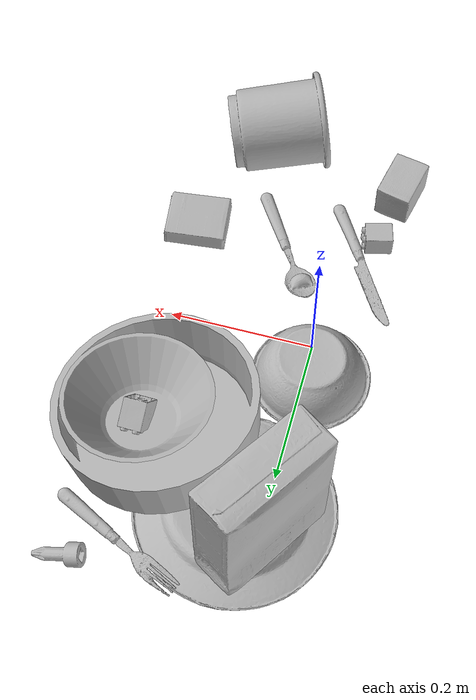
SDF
<sdf version="1.4">
  <world name="default">
    <light name="light1" type="point">
      <pose>0 0 1 0 0 0</pose>
      <diffuse>3 3 3 1</diffuse>
      <specular>3 3 3 1</specular>
    </light>
    <light name="light2" type="point">
      <pose>0 0.5 2 0 0 0</pose>
      <diffuse>1 1 1 1</diffuse>
      <specular>1 1 1 1</specular>
    </light>
    <light name="light3" type="point">
      <pose>0 0.5 2 0 0 0</pose>
      <diffuse>3 3 3 1</diffuse>
      <specular>3 3 3 1</specular>
    </light>
    <scene>
      <ambient>0.7 0.7 0.7</ambient>
    </scene>
    <model name="plate1">
      <link name="link_plate1">
        <collision name="default">
          <geometry>
            <mesh>
              <uri>model://plate/collision_meshes/collision.obj</uri>
              <scale>1.0 1.0 1.0</scale>
            </mesh>
          </geometry>
          <surface>
            <friction>
              <ode>
                <mu>0.5</mu>
                <mu2>0.5</mu2>
              </ode>
            </friction>
          <contact>
        <ode>
            <max_vel>0</max_vel>
            <min_depth>0.0001</min_depth>
            <kp>1e8</kp>
        </ode>
    </contact></surface>
        </collision>
        <visual name="default">
          <geometry>
            <mesh>
              <uri>model://plate/visual_meshes/visual.dae</uri>
              <scale>1.0 1.0 1.0</scale>
            </mesh>
          </geometry>
        </visual>
        <inertial>
          <mass>0.20059238374233246</mass>
          <pose>-0.0006044621695764363 0.00027825910365208983 -0.001056200242601335 0.002218800652723057 -0.0032254723094637602 0.45260588699646775</pose>
          <inertia>
            <ixx>0.00093837525</ixx>
            <iyy>0.0009294</iyy>
            <izz>0.0018353215</izz>
            <ixy>0</ixy>
            <ixz>0</ixz>
            <iyz>0</iyz>
          </inertia>
        </inertial>
      </link>
      <pose>0.03797268494963646 0.25382000207901 0.013482015579938889 3.133197580974559 -0.004056944026910543 0.8168022619599259</pose>
    </model>
    <model name="plate2">
      <link name="link_plate2">
        <collision name="default">
          <geometry>
            <mesh>
              <uri>model://pan_tefal/collision_meshes/collision.obj</uri>
              <scale>1.0 1.0 1.0</scale>
            </mesh>
          </geometry>
          <surface>
            <friction>
              <ode>
                <mu>0.5</mu>
                <mu2>0.5</mu2>
              </ode>
            </friction>
          <contact>
        <ode>
            <max_vel>0</max_vel>
            <min_depth>0.0001</min_depth>
            <kp>1e8</kp>
        </ode>
    </contact></surface>
        </collision>
        <visual name="default">
          <geometry>
            <mesh>
              <uri>model://pan_tefal/visual_meshes/visual.dae</uri>
              <scale>1.0 1.0 1.0</scale>
            </mesh>
          </geometry>
        </visual>
        <inertial>
          <mass>0.5801199674606323</mass>
          <pose>-0.00018002555589191616 3.279062366345897e-05 -0.008514936082065105 0.0008190222895173471 -0.0003301392673675887 -0.3318501085377774</pose>
          <inertia>
            <ixx>0.00400454</ixx>
            <iyy>0.004030358</iyy>
            <izz>0.0073715877</izz>
            <ixy>0</ixy>
            <ixz>0</ixz>
            <iyz>0</iyz>
          </inertia>
        </inertial>
      </link>
      <pose>0.15868507325649261 0.1771358996629715 0.056768909096717834 -0.15490552654277248 0.039984362015803854 -1.8562793106022935</pose>
    </model>
    <model name="bowl1">
      <link name="link_bowl1">
        <collision name="default">
          <geometry>
            <mesh>
              <uri>model://bowl/collision_meshes/collision.obj</uri>
              <scale>1.0 1.0 1.0</scale>
            </mesh>
          </geometry>
          <surface>
            <friction>
              <ode>
                <mu>0.5</mu>
                <mu2>0.5</mu2>
              </ode>
            </friction>
          <contact>
        <ode>
            <max_vel>0</max_vel>
            <min_depth>0.0001</min_depth>
            <kp>1e8</kp>
        </ode>
    </contact></surface>
        </collision>
        <visual name="default">
          <geometry>
            <mesh>
              <uri>model://bowl/visual_meshes/visual.dae</uri>
              <scale>1.0 1.0 1.0</scale>
            </mesh>
          </geometry>
        </visual>
        <inertial>
          <mass>0.055578216910362244</mass>
          <pose>0.00020445502013899386 -0.0010302060982212424 -0.000804265437182039 -0.015764048263850368 0.014546844804774466 0.7140432473852318</pose>
          <inertia>
            <ixx>0.00012766755</ixx>
            <iyy>0.000124815</iyy>
            <izz>0.00021478078</izz>
            <ixy>0</ixy>
            <ixz>0</ixz>
            <iyz>0</iyz>
          </inertia>
        </inertial>
      </link>
      <pose>-0.009089432656764984 0.045431043952703476 0.02724733203649521 -3.132723828822697 0.0006755901257126606 1.1426245033287303</pose>
    </model>
    <model name="bowl2">
      <link name="link_bowl2">
        <collision name="default">
          <geometry>
            <mesh>
              <uri>model://bowl_a/collision_meshes/collision.obj</uri>
              <scale>1.0 1.0 1.0</scale>
            </mesh>
          </geometry>
          <surface>
            <friction>
              <ode>
                <mu>0.5</mu>
                <mu2>0.5</mu2>
              </ode>
            </friction>
          <contact>
        <ode>
            <max_vel>0</max_vel>
            <min_depth>0.0001</min_depth>
            <kp>1e8</kp>
        </ode>
    </contact></surface>
        </collision>
        <visual name="default">
          <geometry>
            <mesh>
              <uri>model://bowl_a/visual_meshes/visual.dae</uri>
              <scale>1.0 1.0 1.0</scale>
            </mesh>
          </geometry>
        </visual>
        <inertial>
          <mass>0.31475314497947693</mass>
          <pose>0.00027867438620887697 4.730821092380211e-05 -0.0013765294570475817 -0.0009805369688078041 -0.0010938258688624044 -0.19123886294168949</pose>
          <inertia>
            <ixx>0.00089611666</ixx>
            <iyy>0.00090161816</iyy>
            <izz>0.0015937777</izz>
            <ixy>0</ixy>
            <ixz>0</ixz>
            <iyz>0</iyz>
          </inertia>
        </inertial>
      </link>
      <pose>0.1853954792022705 0.17692872881889343 0.05742044746875763 -0.015121176522959474 -0.1242266210048881 2.1101667225419254</pose>
    </model>
    <model name="silverware1">
      <link name="link_silverware1">
        <collision name="default">
          <geometry>
            <mesh>
              <uri>model://spoon/collision_meshes/collision.obj</uri>
              <scale>1.0 1.0 1.0</scale>
            </mesh>
          </geometry>
          <surface>
            <friction>
              <ode>
                <mu>0.5</mu>
                <mu2>0.5</mu2>
              </ode>
            </friction>
          <contact>
        <ode>
            <max_vel>0</max_vel>
            <min_depth>0.0001</min_depth>
            <kp>1e8</kp>
        </ode>
    </contact></surface>
        </collision>
        <visual name="default">
          <geometry>
            <mesh>
              <uri>model://spoon/visual_meshes/visual.dae</uri>
              <scale>1.0 1.0 1.0</scale>
            </mesh>
          </geometry>
        </visual>
        <inertial>
          <mass>0.019504988566040993</mass>
          <pose>-0.005526313092559576 -0.0016034174477681518 -0.0007271654321812093 0.03521671064592188 -0.039065845080026425 0.006150613244710899</pose>
          <inertia>
            <ixx>1.0848988e-06</ixx>
            <iyy>7.421582e-05</iyy>
            <izz>7.4750846e-05</izz>
            <ixy>0</ixy>
            <ixz>0</ixz>
            <iyz>0</iyz>
          </inertia>
        </inertial>
      </link>
      <pose>0.07213040441274643 -0.14772285521030426 0.008385262452065945 0.006729206390890761 0.02689299704324799 2.1370247485364984</pose>
    </model>
    <model name="box1">
      <link name="link_box1">
        <collision name="default">
          <geometry>
            <mesh>
              <uri>model://cracker_box/collision_meshes/collision.obj</uri>
              <scale>1.0 1.0 1.0</scale>
            </mesh>
          </geometry>
          <surface>
            <friction>
              <ode>
                <mu>0.5</mu>
                <mu2>0.5</mu2>
              </ode>
            </friction>
          <contact>
        <ode>
            <max_vel>0</max_vel>
            <min_depth>0.0001</min_depth>
            <kp>1e8</kp>
        </ode>
    </contact></surface>
        </collision>
        <visual name="default">
          <geometry>
            <mesh>
              <uri>model://cracker_box/visual_meshes/visual.dae</uri>
              <scale>1.0 1.0 1.0</scale>
            </mesh>
          </geometry>
        </visual>
        <inertial>
          <mass>2.5078790187835693</mass>
          <pose>0.0009464150061830878 0.00025434247800149024 -0.0017029535956680775 -0.00031620768203149627 -0.01110648960041945 0.002546794303792924</pose>
          <inertia>
            <ixx>0.0063789245</ixx>
            <iyy>0.010532858</iyy>
            <izz>0.015031353</izz>
            <ixy>0</ixy>
            <ixz>0</ixz>
            <iyz>0</iyz>
          </inertia>
        </inertial>
      </link>
      <pose>-0.006955252029001713 0.29029402136802673 0.13389262557029724 1.4288870522349515 -1.5692418634587293 -2.0124342435863847</pose>
    </model>
    <model name="box2">
      <link name="link_box2">
        <collision name="default">
          <geometry>
            <mesh>
              <uri>model://gelatin_box/collision_meshes/collision.obj</uri>
              <scale>1.0 1.0 1.0</scale>
            </mesh>
          </geometry>
          <surface>
            <friction>
              <ode>
                <mu>0.5</mu>
                <mu2>0.5</mu2>
              </ode>
            </friction>
          <contact>
        <ode>
            <max_vel>0</max_vel>
            <min_depth>0.0001</min_depth>
            <kp>1e8</kp>
        </ode>
    </contact></surface>
        </collision>
        <visual name="default">
          <geometry>
            <mesh>
              <uri>model://gelatin_box/visual_meshes/visual.dae</uri>
              <scale>1.0 1.0 1.0</scale>
            </mesh>
          </geometry>
        </visual>
        <inertial>
          <mass>0.1847851723432541</mass>
          <pose>0.0004319618456065655 0.00011156872642459348 -0.0003640321083366871 -0.001050372098056681 -0.004755818221834168 0.016440563197305347</pose>
          <inertia>
            <ixx>0.00013044327</ixx>
            <iyy>9.317494e-05</iyy>
            <izz>0.0001985637</izz>
            <ixy>0</ixy>
            <ixz>0</ixz>
            <iyz>0</iyz>
          </inertia>
        </inertial>
      </link>
      <pose>0.20765502750873566 -0.15333762764930725 0.01458064280450344 -3.1258657011638906 -0.025719253369993405 -1.4424494450679115</pose>
    </model>
    <model name="cup1">
      <link name="link_cup1">
        <collision name="default">
          <geometry>
            <mesh>
              <uri>model://d_cups/collision_meshes/collision.obj</uri>
              <scale>2.0 2.0 2.0</scale>
            </mesh>
          </geometry>
          <surface>
            <friction>
              <ode>
                <mu>0.5</mu>
                <mu2>0.5</mu2>
              </ode>
            </friction>
          <contact>
        <ode>
            <max_vel>0</max_vel>
            <min_depth>0.0001</min_depth>
            <kp>1e8</kp>
        </ode>
    </contact></surface>
        </collision>
        <visual name="default">
          <geometry>
            <mesh>
              <uri>model://d_cups/visual_meshes/visual.dae</uri>
              <scale>2.0 2.0 2.0</scale>
            </mesh>
          </geometry>
        </visual>
        <inertial>
          <mass>0.47328615188598633</mass>
          <pose>0.0016136143822222948 0.0038234798703342676 -0.004533303435891867 0.24012870248045765 -0.247092443015796 0.5942312682521343</pose>
          <inertia>
            <ixx>0.0015850074</ixx>
            <iyy>0.0015804201</iyy>
            <izz>0.0014347013</izz>
            <ixy>0</ixy>
            <ixz>0</ixz>
            <iyz>0</iyz>
          </inertia>
        </inertial>
      </link>
      <pose>0.13011272251605988 -0.3144742250442505 0.06484407931566238 -1.4778966975665777 -0.005602550052892742 1.9313778690806627</pose>
    </model>
    <model name="silverware2">
      <link name="link_silverware2">
        <collision name="default">
          <geometry>
            <mesh>
              <uri>model://knife/collision_meshes/collision.obj</uri>
              <scale>1.0 1.0 1.0</scale>
            </mesh>
          </geometry>
          <surface>
            <friction>
              <ode>
                <mu>0.5</mu>
                <mu2>0.5</mu2>
              </ode>
            </friction>
          <contact>
        <ode>
            <max_vel>0</max_vel>
            <min_depth>0.0001</min_depth>
            <kp>1e8</kp>
        </ode>
    </contact></surface>
        </collision>
        <visual name="default">
          <geometry>
            <mesh>
              <uri>model://knife/visual_meshes/visual.dae</uri>
              <scale>1.0 1.0 1.0</scale>
            </mesh>
          </geometry>
        </visual>
        <inertial>
          <mass>0.03430156037211418</mass>
          <pose>-0.02378525398671627 0.0015275129117071629 5.062017953605391e-05 0.07305950900181668 0.01724842494985857 -0.007409825116106198</pose>
          <inertia>
            <ixx>9.736174e-07</ixx>
            <iyy>0.00013178105</iyy>
            <izz>0.00013209462</izz>
            <ixy>0</ixy>
            <ixz>0</ixz>
            <iyz>0</iyz>
          </inertia>
        </inertial>
      </link>
      <pose>-0.035059548914432526 -0.14563487470149994 0.007946522906422615 -0.023907507039314765 -0.014542507484867127 2.1060204383240313</pose>
    </model>
    <model name="silverware3">
      <link name="link_silverware3">
        <collision name="default">
          <geometry>
            <mesh>
              <uri>model://fork/collision_meshes/collision.obj</uri>
              <scale>1.0 1.0 1.0</scale>
            </mesh>
          </geometry>
          <surface>
            <friction>
              <ode>
                <mu>0.5</mu>
                <mu2>0.5</mu2>
              </ode>
            </friction>
          <contact>
        <ode>
            <max_vel>0</max_vel>
            <min_depth>0.0001</min_depth>
            <kp>1e8</kp>
        </ode>
    </contact></surface>
        </collision>
        <visual name="default">
          <geometry>
            <mesh>
              <uri>model://fork/visual_meshes/visual.dae</uri>
              <scale>1.0 1.0 1.0</scale>
            </mesh>
          </geometry>
        </visual>
        <inertial>
          <mass>0.014111565425992012</mass>
          <pose>-0.02957005426287651 0.0004658825055230409 0.00032188615296036005 -0.01355195006397287 -0.010977841645129428 0.014453906946454091</pose>
          <inertia>
            <ixx>4.9469025e-07</ixx>
            <iyy>3.684124e-05</iyy>
            <izz>3.7062495e-05</izz>
            <ixy>0</ixy>
            <ixz>0</ixz>
            <iyz>0</iyz>
          </inertia>
        </inertial>
      </link>
      <pose>0.16897769272327423 0.3340822756290436 0.009117314592003822 -2.647965981382947 -0.018293414564669676 2.687945681978931</pose>
    </model>
    <model name="toy1">
      <link name="link_toy1">
        <collision name="default">
          <geometry>
            <mesh>
              <uri>model://b_lego_duplo/collision_meshes/collision.obj</uri>
              <scale>1.0 1.0 1.0</scale>
            </mesh>
          </geometry>
          <surface>
            <friction>
              <ode>
                <mu>0.5</mu>
                <mu2>0.5</mu2>
              </ode>
            </friction>
          <contact>
        <ode>
            <max_vel>0</max_vel>
            <min_depth>0.0001</min_depth>
            <kp>1e8</kp>
        </ode>
    </contact></surface>
        </collision>
        <visual name="default">
          <geometry>
            <mesh>
              <uri>model://b_lego_duplo/visual_meshes/visual.dae</uri>
              <scale>1.0 1.0 1.0</scale>
            </mesh>
          </geometry>
        </visual>
        <inertial>
          <mass>0.029451588168740273</mass>
          <pose>-0.00011053002526750788 -9.152366146736313e-06 0.0019294293597340584 -0.03749525813168218 -0.026353287435260622 0.45191626186006195</pose>
          <inertia>
            <ixx>6.0274892e-06</ixx>
            <iyy>6.0680068e-06</iyy>
            <izz>5.3702943e-06</izz>
            <ixy>0</ixy>
            <ixz>0</ixz>
            <iyz>0</iyz>
          </inertia>
        </inertial>
      </link>
      <pose>-0.04896446317434311 -0.1898055523633957 0.016121307387948036 1.5723746571726742 -0.012009988450296426 1.8228969349179467</pose>
    </model>
    <model name="toy2">
      <link name="link_toy2">
        <collision name="default">
          <geometry>
            <mesh>
              <uri>model://foam_brick/collision_meshes/collision.obj</uri>
              <scale>1.0 1.0 1.0</scale>
            </mesh>
          </geometry>
          <surface>
            <friction>
              <ode>
                <mu>0.5</mu>
                <mu2>0.5</mu2>
              </ode>
            </friction>
          <contact>
        <ode>
            <max_vel>0</max_vel>
            <min_depth>0.0001</min_depth>
            <kp>1e8</kp>
        </ode>
    </contact></surface>
        </collision>
        <visual name="default">
          <geometry>
            <mesh>
              <uri>model://foam_brick/visual_meshes/visual.dae</uri>
              <scale>1.0 1.0 1.0</scale>
            </mesh>
          </geometry>
        </visual>
        <inertial>
          <mass>0.2443593144416809</mass>
          <pose>-0.0002522472059354186 0.00034584393142722547 -0.0002532101352699101 -0.2940184651969868 0.017274440266988163 -0.0007449890747987857</pose>
          <inertia>
            <ixx>0.00010674072</ixx>
            <iyy>0.00017041703</iyy>
            <izz>0.00017258283</izz>
            <ixy>0</ixy>
            <ixz>0</ixz>
            <iyz>0</iyz>
          </inertia>
        </inertial>
      </link>
      <pose>-0.06559108942747116 -0.27966687083244324 0.02591070346534252 1.5828205654849932 -0.00037543972838482146 1.3674955330019605</pose>
    </model>
    <model name="toy3">
      <link name="link_toy3">
        <collision name="default">
          <geometry>
            <mesh>
              <uri>model://d_lego_duplo/collision_meshes/collision.obj</uri>
              <scale>1.0 1.0 1.0</scale>
            </mesh>
          </geometry>
          <surface>
            <friction>
              <ode>
                <mu>0.5</mu>
                <mu2>0.5</mu2>
              </ode>
            </friction>
          <contact>
        <ode>
            <max_vel>0</max_vel>
            <min_depth>0.0001</min_depth>
            <kp>1e8</kp>
        </ode>
    </contact></surface>
        </collision>
        <visual name="default">
          <geometry>
            <mesh>
              <uri>model://d_lego_duplo/visual_meshes/visual.dae</uri>
              <scale>1.0 1.0 1.0</scale>
            </mesh>
          </geometry>
        </visual>
        <inertial>
          <mass>0.033699363470077515</mass>
          <pose>0.002830563113093376 0.0001636613014852628 0.0008589802891947329 0.08010879334546937 -0.38355231252286476 0.0010296922462193392</pose>
          <inertia>
            <ixx>6.5236977e-06</ixx>
            <iyy>9.258897e-06</iyy>
            <izz>8.928908e-06</izz>
            <ixy>0</ixy>
            <ixz>0</ixz>
            <iyz>0</iyz>
          </inertia>
        </inertial>
      </link>
      <pose>0.18719464540481567 0.18247495591640472 0.04969514161348343 -3.073969009328945 -0.9827748350903609 1.4794017153527728</pose>
    </model>
    <model name="toy4">
      <link name="link_toy4">
        <collision name="default">
          <geometry>
            <mesh>
              <uri>model://d_toy_airplane/collision_meshes/collision.obj</uri>
              <scale>1.0 1.0 1.0</scale>
            </mesh>
          </geometry>
          <surface>
            <friction>
              <ode>
                <mu>0.5</mu>
                <mu2>0.5</mu2>
              </ode>
            </friction>
          <contact>
        <ode>
            <max_vel>0</max_vel>
            <min_depth>0.0001</min_depth>
            <kp>1e8</kp>
        </ode>
    </contact></surface>
        </collision>
        <visual name="default">
          <geometry>
            <mesh>
              <uri>model://d_toy_airplane/visual_meshes/visual.dae</uri>
              <scale>1.0 1.0 1.0</scale>
            </mesh>
          </geometry>
        </visual>
        <inertial>
          <mass>0.016584575176239014</mass>
          <pose>9.410303027834743e-05 -5.809338472317904e-05 -0.01172809861600399 0.0002669776058846709 0.004678969238403601 0.5194647440200774</pose>
          <inertia>
            <ixx>4.9717323e-06</ixx>
            <iyy>4.975482e-06</iyy>
            <izz>1.5009987e-06</izz>
            <ixy>0</ixy>
            <ixz>0</ixz>
            <iyz>0</iyz>
          </inertia>
        </inertial>
      </link>
      <pose>0.23191000521183014 0.37190335988998413 0.01127537153661251 2.327341111648938 1.2427114928821774 2.4540858209078142</pose>
    </model>
    <model name="toy5">
      <link name="link_toy5">
        <collision name="default">
          <geometry>
            <mesh>
              <uri>model://e_toy_airplane/collision_meshes/collision.obj</uri>
              <scale>1.0 1.0 1.0</scale>
            </mesh>
          </geometry>
          <surface>
            <friction>
              <ode>
                <mu>0.5</mu>
                <mu2>0.5</mu2>
              </ode>
            </friction>
          <contact>
        <ode>
            <max_vel>0</max_vel>
            <min_depth>0.0001</min_depth>
            <kp>1e8</kp>
        </ode>
    </contact></surface>
        </collision>
        <visual name="default">
          <geometry>
            <mesh>
              <uri>model://e_toy_airplane/visual_meshes/visual.dae</uri>
              <scale>1.0 1.0 1.0</scale>
            </mesh>
          </geometry>
        </visual>
        <inertial>
          <mass>0.01714155077934265</mass>
          <pose>0.00011740483023459092 -2.2482887288788334e-05 -0.011187203228473663 0.005518467343725363 0.009228313895921611 0.15041273076279138</pose>
          <inertia>
            <ixx>5.2317982e-06</ixx>
            <iyy>5.178279e-06</iyy>
            <izz>1.5723607e-06</izz>
            <ixy>0</ixy>
            <ixz>0</ixz>
            <iyz>0</iyz>
          </inertia>
        </inertial>
      </link>
      <pose>0.1906844824552536 -0.3641212582588196 0.01200210489332676 1.781960510957732 -0.5839035218628089 -3.0854565165259418</pose>
    </model>
  <physics type="ode">
      <max_contacts>50</max_contacts>
      <ode>
        <solver>
          <type>quick</type>
          <iters>75</iters>
        </solver>
        <constraints>
          <contact_max_correcting_vel>0</contact_max_correcting_vel>
          <contact_surface_layer>0</contact_surface_layer>
        </constraints>
      </ode>
    </physics></world>
</sdf>
